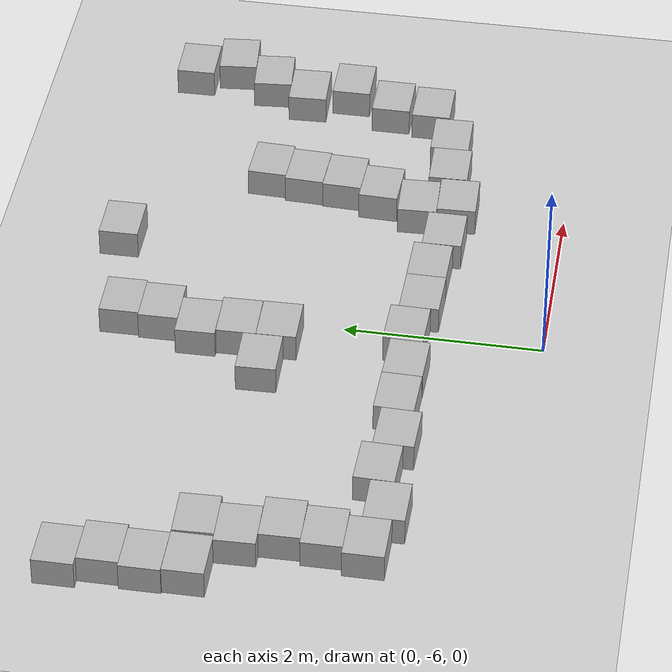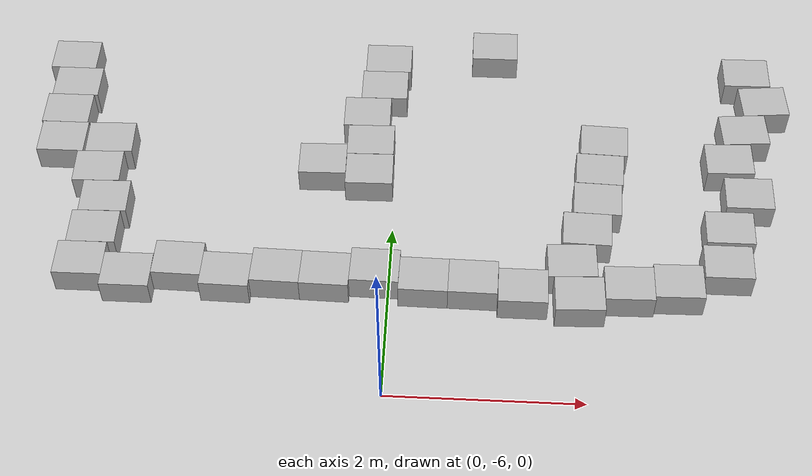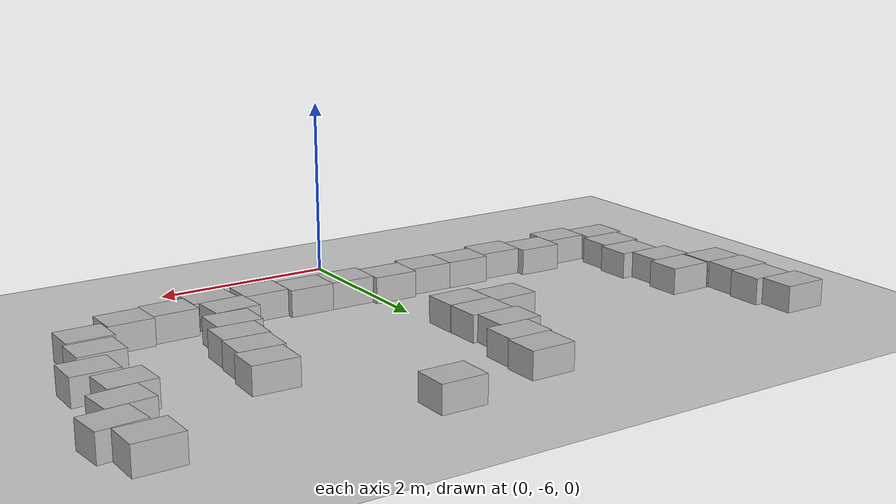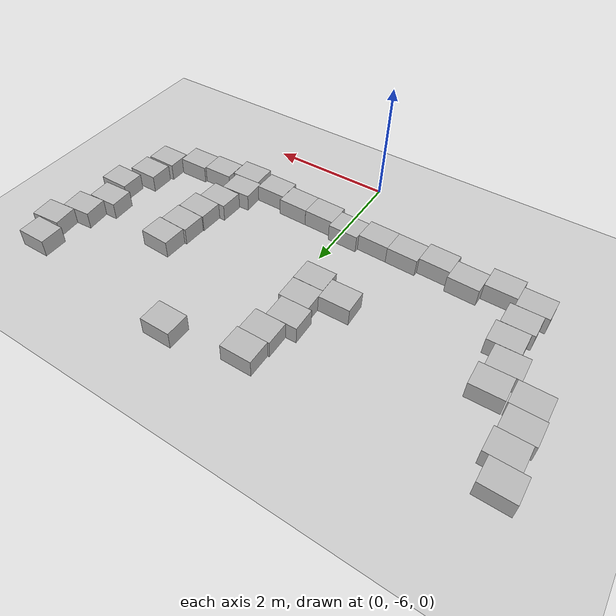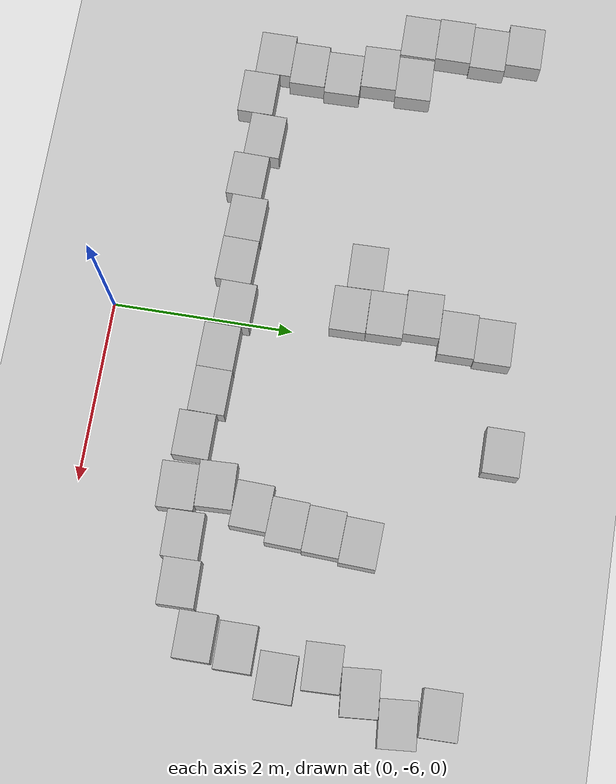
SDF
<sdf version="1.7">
 <world name="default">
  <model name="ground_plane">
   <static>1</static>
   <link name="link">
    <collision name="collision">
     <geometry><plane><normal>0 0 1</normal><size>100 100</size></plane></geometry>
     <surface><friction><ode><mu>100</mu><mu2>50</mu2></ode></friction></surface>
    </collision>
    <visual name="visual">
     <cast_shadows>0</cast_shadows>
     <geometry><plane><normal>0 0 1</normal><size>100 100</size></plane></geometry>
     <material>
      <script><uri>file://media/materials/scripts/gazebo.material</uri><name>Gazebo/Grey</name></script>
     </material>
    </visual>
   </link>
  </model>
  <model name="cardboard_box_clone_1_clone_27">
   <pose>-3.67852 -1.90312 0.149 0 0 -0.000449</pose>
   <link name="link">
    <inertial>
     <mass>2</mass>
     <inertia>
      <ixx>0.0416667</ixx>
      <ixy>0</ixy>
      <ixz>0</ixz>
      <iyy>0.0566667</iyy>
      <iyz>0</iyz>
      <izz>0.0683333</izz>
     </inertia>
    </inertial>
    <collision name="collision">
     <geometry><box><size>0.5 0.4 0.3</size></box></geometry>
     <surface>
      <friction><ode><mu>1</mu><mu2>1</mu2></ode></friction>
      <contact><ode><kp>1e+07</kp><kd>1</kd><min_depth>0.001</min_depth><max_vel>0.1</max_vel></ode></contact>
     </surface>
    </collision>
    <visual name="visual">
     <pose>0 0 -0.15 0 -0 0</pose>
     <geometry>
      <mesh><uri>model://cardboard_box/meshes/cardboard_box.dae</uri><scale>1.25932 1.00745 0.755591</scale></mesh>
     </geometry>
    </visual>
   </link>
  </model>
  <model name="cardboard_box_clone_1_clone_28">
   <pose>-3.58837 -2.30294 0.149 -0 -0 -0.000125</pose>
   <link name="link">
    <inertial>
     <mass>2</mass>
     <inertia>
      <ixx>0.0416667</ixx>
      <ixy>0</ixy>
      <ixz>0</ixz>
      <iyy>0.0566667</iyy>
      <iyz>0</iyz>
      <izz>0.0683333</izz>
     </inertia>
    </inertial>
    <collision name="collision">
     <geometry><box><size>0.5 0.4 0.3</size></box></geometry>
     <surface>
      <friction><ode><mu>1</mu><mu2>1</mu2></ode></friction>
      <contact><ode><kp>1e+07</kp><kd>1</kd><min_depth>0.001</min_depth><max_vel>0.1</max_vel></ode></contact>
     </surface>
    </collision>
    <visual name="visual">
     <pose>0 0 -0.15 0 -0 0</pose>
     <geometry>
      <mesh><uri>model://cardboard_box/meshes/cardboard_box.dae</uri><scale>1.25932 1.00745 0.755591</scale></mesh>
     </geometry>
    </visual>
   </link>
  </model>
  <model name="cardboard_box_clone_1_clone_29">
   <pose>-3.62621 -2.70277 0.149 0 -0 8.4e-05</pose>
   <link name="link">
    <inertial>
     <mass>2</mass>
     <inertia>
      <ixx>0.0416667</ixx>
      <ixy>0</ixy>
      <ixz>0</ixz>
      <iyy>0.0566667</iyy>
      <iyz>0</iyz>
      <izz>0.0683333</izz>
     </inertia>
    </inertial>
    <collision name="collision">
     <geometry><box><size>0.5 0.4 0.3</size></box></geometry>
     <surface>
      <friction><ode><mu>1</mu><mu2>1</mu2></ode></friction>
      <contact><ode><kp>1e+07</kp><kd>1</kd><min_depth>0.001</min_depth><max_vel>0.1</max_vel></ode></contact>
     </surface>
    </collision>
    <visual name="visual">
     <pose>0 0 -0.15 0 -0 0</pose>
     <geometry>
      <mesh><uri>model://cardboard_box/meshes/cardboard_box.dae</uri><scale>1.25932 1.00745 0.755591</scale></mesh>
     </geometry>
    </visual>
   </link>
  </model>
  <model name="cardboard_box_clone_1_clone_30">
   <pose>-3.60942 -3.10296 0.149 0 -0 0.001798</pose>
   <link name="link">
    <inertial>
     <mass>2</mass>
     <inertia>
      <ixx>0.0416667</ixx>
      <ixy>0</ixy>
      <ixz>0</ixz>
      <iyy>0.0566667</iyy>
      <iyz>0</iyz>
      <izz>0.0683333</izz>
     </inertia>
    </inertial>
    <collision name="collision">
     <geometry><box><size>0.5 0.4 0.3</size></box></geometry>
     <surface>
      <friction><ode><mu>1</mu><mu2>1</mu2></ode></friction>
      <contact><ode><kp>1e+07</kp><kd>1</kd><min_depth>0.001</min_depth><max_vel>0.1</max_vel></ode></contact>
     </surface>
    </collision>
    <visual name="visual">
     <pose>0 0 -0.15 0 -0 0</pose>
     <geometry>
      <mesh><uri>model://cardboard_box/meshes/cardboard_box.dae</uri><scale>1.25932 1.00745 0.755591</scale></mesh>
     </geometry>
    </visual>
   </link>
  </model>
  <model name="cardboard_box_clone_1_clone_31">
   <pose>-3.08867 -3.0952 0.149 0 -0 0.025527</pose>
   <link name="link">
    <inertial>
     <mass>2</mass>
     <inertia>
      <ixx>0.0416667</ixx>
      <ixy>0</ixy>
      <ixz>0</ixz>
      <iyy>0.0566667</iyy>
      <iyz>0</iyz>
      <izz>0.0683333</izz>
     </inertia>
    </inertial>
    <collision name="collision">
     <geometry><box><size>0.5 0.4 0.3</size></box></geometry>
     <surface>
      <friction><ode><mu>1</mu><mu2>1</mu2></ode></friction>
      <contact><ode><kp>1e+07</kp><kd>1</kd><min_depth>0.001</min_depth><max_vel>0.1</max_vel></ode></contact>
     </surface>
    </collision>
    <visual name="visual">
     <pose>0 0 -0.15 0 -0 0</pose>
     <geometry>
      <mesh><uri>model://cardboard_box/meshes/cardboard_box.dae</uri><scale>1.25932 1.00745 0.755591</scale></mesh>
     </geometry>
    </visual>
   </link>
  </model>
  <model name="cardboard_box_clone_1_clone_32">
   <pose>-0.155476 -1.79886 0.149 0 -0 0.006625</pose>
   <link name="link">
    <inertial>
     <mass>2</mass>
     <inertia>
      <ixx>0.0416667</ixx>
      <ixy>0</ixy>
      <ixz>0</ixz>
      <iyy>0.0566667</iyy>
      <iyz>0</iyz>
      <izz>0.0683333</izz>
     </inertia>
    </inertial>
    <collision name="collision">
     <geometry><box><size>0.5 0.4 0.3</size></box></geometry>
     <surface>
      <friction><ode><mu>1</mu><mu2>1</mu2></ode></friction>
      <contact><ode><kp>1e+07</kp><kd>1</kd><min_depth>0.001</min_depth><max_vel>0.1</max_vel></ode></contact>
     </surface>
    </collision>
    <visual name="visual">
     <pose>0 0 -0.15 0 -0 0</pose>
     <geometry>
      <mesh><uri>model://cardboard_box/meshes/cardboard_box.dae</uri><scale>1.25932 1.00745 0.755591</scale></mesh>
     </geometry>
    </visual>
   </link>
  </model>
  <model name="cardboard_box_clone_1_clone_33">
   <pose>-0.179333 -2.19811 0.149 0 -0 0.006818</pose>
   <link name="link">
    <inertial>
     <mass>2</mass>
     <inertia>
      <ixx>0.0416667</ixx>
      <ixy>0</ixy>
      <ixz>0</ixz>
      <iyy>0.0566667</iyy>
      <iyz>0</iyz>
      <izz>0.0683333</izz>
     </inertia>
    </inertial>
    <collision name="collision">
     <geometry><box><size>0.5 0.4 0.3</size></box></geometry>
     <surface>
      <friction><ode><mu>1</mu><mu2>1</mu2></ode></friction>
      <contact><ode><kp>1e+07</kp><kd>1</kd><min_depth>0.001</min_depth><max_vel>0.1</max_vel></ode></contact>
     </surface>
    </collision>
    <visual name="visual">
     <pose>0 0 -0.15 0 -0 0</pose>
     <geometry>
      <mesh><uri>model://cardboard_box/meshes/cardboard_box.dae</uri><scale>1.25932 1.00745 0.755591</scale></mesh>
     </geometry>
    </visual>
   </link>
  </model>
  <model name="cardboard_box_clone_1_clone_34">
   <pose>-0.346173 -2.60035 0.149 0 -0 0.014641</pose>
   <link name="link">
    <inertial>
     <mass>2</mass>
     <inertia>
      <ixx>0.0416667</ixx>
      <ixy>0</ixy>
      <ixz>0</ixz>
      <iyy>0.0566667</iyy>
      <iyz>0</iyz>
      <izz>0.0683333</izz>
     </inertia>
    </inertial>
    <collision name="collision">
     <geometry><box><size>0.5 0.4 0.3</size></box></geometry>
     <surface>
      <friction><ode><mu>1</mu><mu2>1</mu2></ode></friction>
      <contact><ode><kp>1e+07</kp><kd>1</kd><min_depth>0.001</min_depth><max_vel>0.1</max_vel></ode></contact>
     </surface>
    </collision>
    <visual name="visual">
     <pose>0 0 -0.15 0 -0 0</pose>
     <geometry>
      <mesh><uri>model://cardboard_box/meshes/cardboard_box.dae</uri><scale>1.25932 1.00745 0.755591</scale></mesh>
     </geometry>
    </visual>
   </link>
  </model>
  <model name="cardboard_box_clone_1_clone_35">
   <pose>-0.284939 -2.99955 0.149 0 -0 0.017939</pose>
   <link name="link">
    <inertial>
     <mass>2</mass>
     <inertia>
      <ixx>0.0416667</ixx>
      <ixy>0</ixy>
      <ixz>0</ixz>
      <iyy>0.0566667</iyy>
      <iyz>0</iyz>
      <izz>0.0683333</izz>
     </inertia>
    </inertial>
    <collision name="collision">
     <geometry><box><size>0.5 0.4 0.3</size></box></geometry>
     <surface>
      <friction><ode><mu>1</mu><mu2>1</mu2></ode></friction>
      <contact><ode><kp>1e+07</kp><kd>1</kd><min_depth>0.001</min_depth><max_vel>0.1</max_vel></ode></contact>
     </surface>
    </collision>
    <visual name="visual">
     <pose>0 0 -0.15 0 -0 0</pose>
     <geometry>
      <mesh><uri>model://cardboard_box/meshes/cardboard_box.dae</uri><scale>1.25932 1.00745 0.755591</scale></mesh>
     </geometry>
    </visual>
   </link>
  </model>
  <model name="cardboard_box_clone_1_clone_36">
   <pose>-0.275824 -3.40108 0.149 0 -0 0.012612</pose>
   <link name="link">
    <inertial>
     <mass>2</mass>
     <inertia>
      <ixx>0.0416667</ixx>
      <ixy>0</ixy>
      <ixz>0</ixz>
      <iyy>0.0566667</iyy>
      <iyz>0</iyz>
      <izz>0.0683333</izz>
     </inertia>
    </inertial>
    <collision name="collision">
     <geometry><box><size>0.5 0.4 0.3</size></box></geometry>
     <surface>
      <friction><ode><mu>1</mu><mu2>1</mu2></ode></friction>
      <contact><ode><kp>1e+07</kp><kd>1</kd><min_depth>0.001</min_depth><max_vel>0.1</max_vel></ode></contact>
     </surface>
    </collision>
    <visual name="visual">
     <pose>0 0 -0.15 0 -0 0</pose>
     <geometry>
      <mesh><uri>model://cardboard_box/meshes/cardboard_box.dae</uri><scale>1.25932 1.00745 0.755591</scale></mesh>
     </geometry>
    </visual>
   </link>
  </model>
  <model name="cardboard_box_clone_1_clone_37">
   <pose>-0.779447 -3.2808 0.149 0 -0 0.019452</pose>
   <link name="link">
    <inertial>
     <mass>2</mass>
     <inertia>
      <ixx>0.0416667</ixx>
      <ixy>0</ixy>
      <ixz>0</ixz>
      <iyy>0.0566667</iyy>
      <iyz>0</iyz>
      <izz>0.0683333</izz>
     </inertia>
    </inertial>
    <collision name="collision">
     <geometry><box><size>0.5 0.4 0.3</size></box></geometry>
     <surface>
      <friction><ode><mu>1</mu><mu2>1</mu2></ode></friction>
      <contact><ode><kp>1e+07</kp><kd>1</kd><min_depth>0.001</min_depth><max_vel>0.1</max_vel></ode></contact>
     </surface>
    </collision>
    <visual name="visual">
     <pose>0 0 -0.15 0 -0 0</pose>
     <geometry>
      <mesh><uri>model://cardboard_box/meshes/cardboard_box.dae</uri><scale>1.25932 1.00745 0.755591</scale></mesh>
     </geometry>
    </visual>
   </link>
  </model>
  <model name="cardboard_box_clone_1_clone_38">
   <pose>-3.15869 -3.49667 0.149 0 -0 0.024646</pose>
   <link name="link">
    <inertial>
     <mass>2</mass>
     <inertia>
      <ixx>0.0416667</ixx>
      <ixy>0</ixy>
      <ixz>0</ixz>
      <iyy>0.0566667</iyy>
      <iyz>0</iyz>
      <izz>0.0683333</izz>
     </inertia>
    </inertial>
    <collision name="collision">
     <geometry><box><size>0.5 0.4 0.3</size></box></geometry>
     <surface>
      <friction><ode><mu>1</mu><mu2>1</mu2></ode></friction>
      <contact><ode><kp>1e+07</kp><kd>1</kd><min_depth>0.001</min_depth><max_vel>0.1</max_vel></ode></contact>
     </surface>
    </collision>
    <visual name="visual">
     <pose>0 0 -0.15 0 -0 0</pose>
     <geometry>
      <mesh><uri>model://cardboard_box/meshes/cardboard_box.dae</uri><scale>1.25932 1.00745 0.755591</scale></mesh>
     </geometry>
    </visual>
   </link>
  </model>
  <model name="cardboard_box_clone_1_clone_39">
   <pose>-3.02009 -3.89514 0.149 0 -0 0.015917</pose>
   <link name="link">
    <inertial>
     <mass>2</mass>
     <inertia>
      <ixx>0.0416667</ixx>
      <ixy>0</ixy>
      <ixz>0</ixz>
      <iyy>0.0566667</iyy>
      <iyz>0</iyz>
      <izz>0.0683333</izz>
     </inertia>
    </inertial>
    <collision name="collision">
     <geometry><box><size>0.5 0.4 0.3</size></box></geometry>
     <surface>
      <friction><ode><mu>1</mu><mu2>1</mu2></ode></friction>
      <contact><ode><kp>1e+07</kp><kd>1</kd><min_depth>0.001</min_depth><max_vel>0.1</max_vel></ode></contact>
     </surface>
    </collision>
    <visual name="visual">
     <pose>0 0 -0.15 0 -0 0</pose>
     <geometry>
      <mesh><uri>model://cardboard_box/meshes/cardboard_box.dae</uri><scale>1.25932 1.00745 0.755591</scale></mesh>
     </geometry>
    </visual>
   </link>
  </model>
  <model name="cardboard_box_clone_1_clone_40">
   <pose>-3.06921 -4.29699 0.149 0 -0 0.006871</pose>
   <link name="link">
    <inertial>
     <mass>2</mass>
     <inertia>
      <ixx>0.0416667</ixx>
      <ixy>0</ixy>
      <ixz>0</ixz>
      <iyy>0.0566667</iyy>
      <iyz>0</iyz>
      <izz>0.0683333</izz>
     </inertia>
    </inertial>
    <collision name="collision">
     <geometry><box><size>0.5 0.4 0.3</size></box></geometry>
     <surface>
      <friction><ode><mu>1</mu><mu2>1</mu2></ode></friction>
      <contact><ode><kp>1e+07</kp><kd>1</kd><min_depth>0.001</min_depth><max_vel>0.1</max_vel></ode></contact>
     </surface>
    </collision>
    <visual name="visual">
     <pose>0 0 -0.15 0 -0 0</pose>
     <geometry>
      <mesh><uri>model://cardboard_box/meshes/cardboard_box.dae</uri><scale>1.25932 1.00745 0.755591</scale></mesh>
     </geometry>
    </visual>
   </link>
  </model>
  <model name="cardboard_box_clone_1_clone_41">
   <pose>-3.14101 -4.69767 0.149 0 -0 0.000338</pose>
   <link name="link">
    <inertial>
     <mass>2</mass>
     <inertia>
      <ixx>0.0416667</ixx>
      <ixy>0</ixy>
      <ixz>0</ixz>
      <iyy>0.0566667</iyy>
      <iyz>0</iyz>
      <izz>0.0683333</izz>
     </inertia>
    </inertial>
    <collision name="collision">
     <geometry><box><size>0.5 0.4 0.3</size></box></geometry>
     <surface>
      <friction><ode><mu>1</mu><mu2>1</mu2></ode></friction>
      <contact><ode><kp>1e+07</kp><kd>1</kd><min_depth>0.001</min_depth><max_vel>0.1</max_vel></ode></contact>
     </surface>
    </collision>
    <visual name="visual">
     <pose>0 0 -0.15 0 -0 0</pose>
     <geometry>
      <mesh><uri>model://cardboard_box/meshes/cardboard_box.dae</uri><scale>1.25932 1.00745 0.755591</scale></mesh>
     </geometry>
    </visual>
   </link>
  </model>
  <model name="cardboard_box_clone_1_clone_42">
   <pose>-2.64169 -4.81898 0.149 0 -0 -0.003147</pose>
   <link name="link">
    <inertial>
     <mass>2</mass>
     <inertia>
      <ixx>0.0416667</ixx>
      <ixy>0</ixy>
      <ixz>0</ixz>
      <iyy>0.0566667</iyy>
      <iyz>0</iyz>
      <izz>0.0683333</izz>
     </inertia>
    </inertial>
    <collision name="collision">
     <geometry><box><size>0.5 0.4 0.3</size></box></geometry>
     <surface>
      <friction><ode><mu>1</mu><mu2>1</mu2></ode></friction>
      <contact><ode><kp>1e+07</kp><kd>1</kd><min_depth>0.001</min_depth><max_vel>0.1</max_vel></ode></contact>
     </surface>
    </collision>
    <visual name="visual">
     <pose>0 0 -0.15 0 -0 0</pose>
     <geometry>
      <mesh><uri>model://cardboard_box/meshes/cardboard_box.dae</uri><scale>1.25932 1.00745 0.755591</scale></mesh>
     </geometry>
    </visual>
   </link>
  </model>
  <model name="cardboard_box_clone_1_clone_43">
   <pose>-2.13754 -4.6553 0.149 0 0 -0.022778</pose>
   <link name="link">
    <inertial>
     <mass>2</mass>
     <inertia>
      <ixx>0.0416667</ixx>
      <ixy>0</ixy>
      <ixz>0</ixz>
      <iyy>0.0566667</iyy>
      <iyz>0</iyz>
      <izz>0.0683333</izz>
     </inertia>
    </inertial>
    <collision name="collision">
     <geometry><box><size>0.5 0.4 0.3</size></box></geometry>
     <surface>
      <friction><ode><mu>1</mu><mu2>1</mu2></ode></friction>
      <contact><ode><kp>1e+07</kp><kd>1</kd><min_depth>0.001</min_depth><max_vel>0.1</max_vel></ode></contact>
     </surface>
    </collision>
    <visual name="visual">
     <pose>0 0 -0.15 0 -0 0</pose>
     <geometry>
      <mesh><uri>model://cardboard_box/meshes/cardboard_box.dae</uri><scale>1.25932 1.00745 0.755591</scale></mesh>
     </geometry>
    </visual>
   </link>
  </model>
  <model name="cardboard_box_clone_1_clone_44">
   <pose>-1.64021 -4.77038 0.149 0 -0 -0.022615</pose>
   <link name="link">
    <inertial>
     <mass>2</mass>
     <inertia>
      <ixx>0.0416667</ixx>
      <ixy>0</ixy>
      <ixz>0</ixz>
      <iyy>0.0566667</iyy>
      <iyz>0</iyz>
      <izz>0.0683333</izz>
     </inertia>
    </inertial>
    <collision name="collision">
     <geometry><box><size>0.5 0.4 0.3</size></box></geometry>
     <surface>
      <friction><ode><mu>1</mu><mu2>1</mu2></ode></friction>
      <contact><ode><kp>1e+07</kp><kd>1</kd><min_depth>0.001</min_depth><max_vel>0.1</max_vel></ode></contact>
     </surface>
    </collision>
    <visual name="visual">
     <pose>0 0 -0.15 0 -0 0</pose>
     <geometry>
      <mesh><uri>model://cardboard_box/meshes/cardboard_box.dae</uri><scale>1.25932 1.00745 0.755591</scale></mesh>
     </geometry>
    </visual>
   </link>
  </model>
  <model name="cardboard_box_clone_1_clone_45">
   <pose>-1.13868 -4.70217 0.149 0 0 -0.02198</pose>
   <link name="link">
    <inertial>
     <mass>2</mass>
     <inertia>
      <ixx>0.0416667</ixx>
      <ixy>0</ixy>
      <ixz>0</ixz>
      <iyy>0.0566667</iyy>
      <iyz>0</iyz>
      <izz>0.0683333</izz>
     </inertia>
    </inertial>
    <collision name="collision">
     <geometry><box><size>0.5 0.4 0.3</size></box></geometry>
     <surface>
      <friction><ode><mu>1</mu><mu2>1</mu2></ode></friction>
      <contact><ode><kp>1e+07</kp><kd>1</kd><min_depth>0.001</min_depth><max_vel>0.1</max_vel></ode></contact>
     </surface>
    </collision>
    <visual name="visual">
     <pose>0 0 -0.15 0 -0 0</pose>
     <geometry>
      <mesh><uri>model://cardboard_box/meshes/cardboard_box.dae</uri><scale>1.25932 1.00745 0.755591</scale></mesh>
     </geometry>
    </visual>
   </link>
  </model>
  <model name="cardboard_box_clone_1_clone_46">
   <pose>-0.639343 -4.71555 0.149 0 -0 -0.022218</pose>
   <link name="link">
    <inertial>
     <mass>2</mass>
     <inertia>
      <ixx>0.0416667</ixx>
      <ixy>0</ixy>
      <ixz>0</ixz>
      <iyy>0.0566667</iyy>
      <iyz>0</iyz>
      <izz>0.0683333</izz>
     </inertia>
    </inertial>
    <collision name="collision">
     <geometry><box><size>0.5 0.4 0.3</size></box></geometry>
     <surface>
      <friction><ode><mu>1</mu><mu2>1</mu2></ode></friction>
      <contact><ode><kp>1e+07</kp><kd>1</kd><min_depth>0.001</min_depth><max_vel>0.1</max_vel></ode></contact>
     </surface>
    </collision>
    <visual name="visual">
     <pose>0 0 -0.15 0 -0 0</pose>
     <geometry>
      <mesh><uri>model://cardboard_box/meshes/cardboard_box.dae</uri><scale>1.25932 1.00745 0.755591</scale></mesh>
     </geometry>
    </visual>
   </link>
  </model>
  <model name="cardboard_box_clone_1_clone_47">
   <pose>-0.138284 -4.65138 0.149 0 0 -0.019123</pose>
   <link name="link">
    <inertial>
     <mass>2</mass>
     <inertia>
      <ixx>0.0416667</ixx>
      <ixy>0</ixy>
      <ixz>0</ixz>
      <iyy>0.0566667</iyy>
      <iyz>0</iyz>
      <izz>0.0683333</izz>
     </inertia>
    </inertial>
    <collision name="collision">
     <geometry><box><size>0.5 0.4 0.3</size></box></geometry>
     <surface>
      <friction><ode><mu>1</mu><mu2>1</mu2></ode></friction>
      <contact><ode><kp>1e+07</kp><kd>1</kd><min_depth>0.001</min_depth><max_vel>0.1</max_vel></ode></contact>
     </surface>
    </collision>
    <visual name="visual">
     <pose>0 0 -0.15 0 -0 0</pose>
     <geometry>
      <mesh><uri>model://cardboard_box/meshes/cardboard_box.dae</uri><scale>1.25932 1.00745 0.755591</scale></mesh>
     </geometry>
    </visual>
   </link>
  </model>
  <model name="cardboard_box_clone_1_clone_48">
   <pose>0.360451 -4.74196 0.149 0 0 -0.01476</pose>
   <link name="link">
    <inertial>
     <mass>2</mass>
     <inertia>
      <ixx>0.0416667</ixx>
      <ixy>0</ixy>
      <ixz>0</ixz>
      <iyy>0.0566667</iyy>
      <iyz>0</iyz>
      <izz>0.0683333</izz>
     </inertia>
    </inertial>
    <collision name="collision">
     <geometry><box><size>0.5 0.4 0.3</size></box></geometry>
     <surface>
      <friction><ode><mu>1</mu><mu2>1</mu2></ode></friction>
      <contact><ode><kp>1e+07</kp><kd>1</kd><min_depth>0.001</min_depth><max_vel>0.1</max_vel></ode></contact>
     </surface>
    </collision>
    <visual name="visual">
     <pose>0 0 -0.15 0 -0 0</pose>
     <geometry>
      <mesh><uri>model://cardboard_box/meshes/cardboard_box.dae</uri><scale>1.25932 1.00745 0.755591</scale></mesh>
     </geometry>
    </visual>
   </link>
  </model>
  <model name="cardboard_box_clone_1_clone_49">
   <pose>0.860372 -4.74782 0.149 0 -0 -0.01467</pose>
   <link name="link">
    <inertial>
     <mass>2</mass>
     <inertia>
      <ixx>0.0416667</ixx>
      <ixy>0</ixy>
      <ixz>0</ixz>
      <iyy>0.0566667</iyy>
      <iyz>0</iyz>
      <izz>0.0683333</izz>
     </inertia>
    </inertial>
    <collision name="collision">
     <geometry><box><size>0.5 0.4 0.3</size></box></geometry>
     <surface>
      <friction><ode><mu>1</mu><mu2>1</mu2></ode></friction>
      <contact><ode><kp>1e+07</kp><kd>1</kd><min_depth>0.001</min_depth><max_vel>0.1</max_vel></ode></contact>
     </surface>
    </collision>
    <visual name="visual">
     <pose>0 0 -0.15 0 -0 0</pose>
     <geometry>
      <mesh><uri>model://cardboard_box/meshes/cardboard_box.dae</uri><scale>1.25932 1.00745 0.755591</scale></mesh>
     </geometry>
    </visual>
   </link>
  </model>
  <model name="cardboard_box_clone_1_clone_50">
   <pose>1.02912 -1.55303 0.149 0 -0 0.001314</pose>
   <link name="link">
    <inertial>
     <mass>2</mass>
     <inertia>
      <ixx>0.0416667</ixx>
      <ixy>0</ixy>
      <ixz>0</ixz>
      <iyy>0.0566667</iyy>
      <iyz>0</iyz>
      <izz>0.0683333</izz>
     </inertia>
    </inertial>
    <collision name="collision">
     <geometry><box><size>0.5 0.4 0.3</size></box></geometry>
     <surface>
      <friction><ode><mu>1</mu><mu2>1</mu2></ode></friction>
      <contact><ode><kp>1e+07</kp><kd>1</kd><min_depth>0.001</min_depth><max_vel>0.1</max_vel></ode></contact>
     </surface>
    </collision>
    <visual name="visual">
     <pose>0 0 -0.15 0 -0 0</pose>
     <geometry>
      <mesh><uri>model://cardboard_box/meshes/cardboard_box.dae</uri><scale>1.25932 1.00745 0.755591</scale></mesh>
     </geometry>
    </visual>
   </link>
  </model>
  <model name="cardboard_box_clone_1_clone_53">
   <pose>3.82431 -1.83138 0.149 0 -0 0.012627</pose>
   <link name="link">
    <inertial>
     <mass>2</mass>
     <inertia>
      <ixx>0.0416667</ixx>
      <ixy>0</ixy>
      <ixz>0</ixz>
      <iyy>0.0566667</iyy>
      <iyz>0</iyz>
      <izz>0.0683333</izz>
     </inertia>
    </inertial>
    <collision name="collision">
     <geometry><box><size>0.5 0.4 0.3</size></box></geometry>
     <surface>
      <friction><ode><mu>1</mu><mu2>1</mu2></ode></friction>
      <contact><ode><kp>1e+07</kp><kd>1</kd><min_depth>0.001</min_depth><max_vel>0.1</max_vel></ode></contact>
     </surface>
    </collision>
    <visual name="visual">
     <pose>0 0 -0.15 0 -0 0</pose>
     <geometry>
      <mesh><uri>model://cardboard_box/meshes/cardboard_box.dae</uri><scale>1.25932 1.00745 0.755591</scale></mesh>
     </geometry>
    </visual>
   </link>
  </model>
  <model name="cardboard_box_clone_1_clone_55">
   <pose>3.98521 -2.24876 0.149 0 -0 0.085073</pose>
   <link name="link">
    <inertial>
     <mass>2</mass>
     <inertia>
      <ixx>0.0416667</ixx>
      <ixy>0</ixy>
      <ixz>0</ixz>
      <iyy>0.0566667</iyy>
      <iyz>0</iyz>
      <izz>0.0683333</izz>
     </inertia>
    </inertial>
    <collision name="collision">
     <geometry><box><size>0.5 0.4 0.3</size></box></geometry>
     <surface>
      <friction><ode><mu>1</mu><mu2>1</mu2></ode></friction>
      <contact><ode><kp>1e+07</kp><kd>1</kd><min_depth>0.001</min_depth><max_vel>0.1</max_vel></ode></contact>
     </surface>
    </collision>
    <visual name="visual">
     <pose>0 0 -0.15 0 -0 0</pose>
     <geometry>
      <mesh><uri>model://cardboard_box/meshes/cardboard_box.dae</uri><scale>1.25932 1.00745 0.755591</scale></mesh>
     </geometry>
    </visual>
   </link>
  </model>
  <model name="cardboard_box_clone_1_clone_56">
   <pose>3.73821 -2.67259 0.149 0 -0 0.080928</pose>
   <link name="link">
    <inertial>
     <mass>2</mass>
     <inertia>
      <ixx>0.0416667</ixx>
      <ixy>0</ixy>
      <ixz>0</ixz>
      <iyy>0.0566667</iyy>
      <iyz>0</iyz>
      <izz>0.0683333</izz>
     </inertia>
    </inertial>
    <collision name="collision">
     <geometry><box><size>0.5 0.4 0.3</size></box></geometry>
     <surface>
      <friction><ode><mu>1</mu><mu2>1</mu2></ode></friction>
      <contact><ode><kp>1e+07</kp><kd>1</kd><min_depth>0.001</min_depth><max_vel>0.1</max_vel></ode></contact>
     </surface>
    </collision>
    <visual name="visual">
     <pose>0 0 -0.15 0 -0 0</pose>
     <geometry>
      <mesh><uri>model://cardboard_box/meshes/cardboard_box.dae</uri><scale>1.25932 1.00745 0.755591</scale></mesh>
     </geometry>
    </visual>
   </link>
  </model>
  <model name="cardboard_box_clone_1_clone_57">
   <pose>3.54721 -3.09017 0.149 0 -0 0.034348</pose>
   <link name="link">
    <inertial>
     <mass>2</mass>
     <inertia>
      <ixx>0.0416667</ixx>
      <ixy>0</ixy>
      <ixz>0</ixz>
      <iyy>0.0566667</iyy>
      <iyz>0</iyz>
      <izz>0.0683333</izz>
     </inertia>
    </inertial>
    <collision name="collision">
     <geometry><box><size>0.5 0.4 0.3</size></box></geometry>
     <surface>
      <friction><ode><mu>1</mu><mu2>1</mu2></ode></friction>
      <contact><ode><kp>1e+07</kp><kd>1</kd><min_depth>0.001</min_depth><max_vel>0.1</max_vel></ode></contact>
     </surface>
    </collision>
    <visual name="visual">
     <pose>0 0 -0.15 0 -0 0</pose>
     <geometry>
      <mesh><uri>model://cardboard_box/meshes/cardboard_box.dae</uri><scale>1.25932 1.00745 0.755591</scale></mesh>
     </geometry>
    </visual>
   </link>
  </model>
  <model name="cardboard_box_clone_1_clone_58">
   <pose>3.72206 -3.54687 0.149 0 0 -0.000102</pose>
   <link name="link">
    <inertial>
     <mass>2</mass>
     <inertia>
      <ixx>0.0416667</ixx>
      <ixy>0</ixy>
      <ixz>0</ixz>
      <iyy>0.0566667</iyy>
      <iyz>0</iyz>
      <izz>0.0683333</izz>
     </inertia>
    </inertial>
    <collision name="collision">
     <geometry><box><size>0.5 0.4 0.3</size></box></geometry>
     <surface>
      <friction><ode><mu>1</mu><mu2>1</mu2></ode></friction>
      <contact><ode><kp>1e+07</kp><kd>1</kd><min_depth>0.001</min_depth><max_vel>0.1</max_vel></ode></contact>
     </surface>
    </collision>
    <visual name="visual">
     <pose>0 0 -0.15 0 -0 0</pose>
     <geometry>
      <mesh><uri>model://cardboard_box/meshes/cardboard_box.dae</uri><scale>1.25932 1.00745 0.755591</scale></mesh>
     </geometry>
    </visual>
   </link>
  </model>
  <model name="cardboard_box_clone_1_clone_59">
   <pose>3.48737 -4.00935 0.149 0 0 -0.000102</pose>
   <link name="link">
    <inertial>
     <mass>2</mass>
     <inertia>
      <ixx>0.0416667</ixx>
      <ixy>0</ixy>
      <ixz>0</ixz>
      <iyy>0.0566667</iyy>
      <iyz>0</iyz>
      <izz>0.0683333</izz>
     </inertia>
    </inertial>
    <collision name="collision">
     <geometry><box><size>0.5 0.4 0.3</size></box></geometry>
     <surface>
      <friction><ode><mu>1</mu><mu2>1</mu2></ode></friction>
      <contact><ode><kp>1e+07</kp><kd>1</kd><min_depth>0.001</min_depth><max_vel>0.1</max_vel></ode></contact>
     </surface>
    </collision>
    <visual name="visual">
     <pose>0 0 -0.15 0 -0 0</pose>
     <geometry>
      <mesh><uri>model://cardboard_box/meshes/cardboard_box.dae</uri><scale>1.25932 1.00745 0.755591</scale></mesh>
     </geometry>
    </visual>
   </link>
  </model>
  <model name="cardboard_box_clone_1_clone_60">
   <pose>3.44287 -4.44508 0.149 0 0 -0.000102</pose>
   <link name="link">
    <inertial>
     <mass>2</mass>
     <inertia>
      <ixx>0.0416667</ixx>
      <ixy>0</ixy>
      <ixz>0</ixz>
      <iyy>0.0566667</iyy>
      <iyz>0</iyz>
      <izz>0.0683333</izz>
     </inertia>
    </inertial>
    <collision name="collision">
     <geometry><box><size>0.5 0.4 0.3</size></box></geometry>
     <surface>
      <friction><ode><mu>1</mu><mu2>1</mu2></ode></friction>
      <contact><ode><kp>1e+07</kp><kd>1</kd><min_depth>0.001</min_depth><max_vel>0.1</max_vel></ode></contact>
     </surface>
    </collision>
    <visual name="visual">
     <pose>0 0 -0.15 0 -0 0</pose>
     <geometry>
      <mesh><uri>model://cardboard_box/meshes/cardboard_box.dae</uri><scale>1.25932 1.00745 0.755591</scale></mesh>
     </geometry>
    </visual>
   </link>
  </model>
  <model name="cardboard_box_clone_1_clone_61">
   <pose>1.36182 -4.83327 0.149 0 0 -0.001998</pose>
   <link name="link">
    <inertial>
     <mass>2</mass>
     <inertia>
      <ixx>0.0416667</ixx>
      <ixy>0</ixy>
      <ixz>0</ixz>
      <iyy>0.0566667</iyy>
      <iyz>0</iyz>
      <izz>0.0683333</izz>
     </inertia>
    </inertial>
    <collision name="collision">
     <geometry><box><size>0.5 0.4 0.3</size></box></geometry>
     <surface>
      <friction><ode><mu>1</mu><mu2>1</mu2></ode></friction>
      <contact><ode><kp>1e+07</kp><kd>1</kd><min_depth>0.001</min_depth><max_vel>0.1</max_vel></ode></contact>
     </surface>
    </collision>
    <visual name="visual">
     <pose>0 0 -0.15 0 -0 0</pose>
     <geometry>
      <mesh><uri>model://cardboard_box/meshes/cardboard_box.dae</uri><scale>1.25932 1.00745 0.755591</scale></mesh>
     </geometry>
    </visual>
   </link>
  </model>
  <model name="cardboard_box_clone_1_clone_62">
   <pose>1.92846 -4.90214 0.149 0 -0 0.029098</pose>
   <link name="link">
    <inertial>
     <mass>2</mass>
     <inertia>
      <ixx>0.0416667</ixx>
      <ixy>0</ixy>
      <ixz>0</ixz>
      <iyy>0.0566667</iyy>
      <iyz>0</iyz>
      <izz>0.0683333</izz>
     </inertia>
    </inertial>
    <collision name="collision">
     <geometry><box><size>0.5 0.4 0.3</size></box></geometry>
     <surface>
      <friction><ode><mu>1</mu><mu2>1</mu2></ode></friction>
      <contact><ode><kp>1e+07</kp><kd>1</kd><min_depth>0.001</min_depth><max_vel>0.1</max_vel></ode></contact>
     </surface>
    </collision>
    <visual name="visual">
     <pose>0 0 -0.15 0 -0 0</pose>
     <geometry>
      <mesh><uri>model://cardboard_box/meshes/cardboard_box.dae</uri><scale>1.25932 1.00745 0.755591</scale></mesh>
     </geometry>
    </visual>
   </link>
  </model>
  <model name="cardboard_box_clone_1_clone_63">
   <pose>1.85776 -4.50326 0.149 0 -0 0.037344</pose>
   <link name="link">
    <inertial>
     <mass>2</mass>
     <inertia>
      <ixx>0.0416667</ixx>
      <ixy>0</ixy>
      <ixz>0</ixz>
      <iyy>0.0566667</iyy>
      <iyz>0</iyz>
      <izz>0.0683333</izz>
     </inertia>
    </inertial>
    <collision name="collision">
     <geometry><box><size>0.5 0.4 0.3</size></box></geometry>
     <surface>
      <friction><ode><mu>1</mu><mu2>1</mu2></ode></friction>
      <contact><ode><kp>1e+07</kp><kd>1</kd><min_depth>0.001</min_depth><max_vel>0.1</max_vel></ode></contact>
     </surface>
    </collision>
    <visual name="visual">
     <pose>0 0 -0.15 0 -0 0</pose>
     <geometry>
      <mesh><uri>model://cardboard_box/meshes/cardboard_box.dae</uri><scale>1.25932 1.00745 0.755591</scale></mesh>
     </geometry>
    </visual>
   </link>
  </model>
  <model name="cardboard_box_clone_1_clone_64">
   <pose>2.01932 -4.09215 0.149 0 0 -0.033712</pose>
   <link name="link">
    <inertial>
     <mass>2</mass>
     <inertia>
      <ixx>0.0416667</ixx>
      <ixy>0</ixy>
      <ixz>0</ixz>
      <iyy>0.0566667</iyy>
      <iyz>0</iyz>
      <izz>0.0683333</izz>
     </inertia>
    </inertial>
    <collision name="collision">
     <geometry><box><size>0.5 0.4 0.3</size></box></geometry>
     <surface>
      <friction><ode><mu>1</mu><mu2>1</mu2></ode></friction>
      <contact><ode><kp>1e+07</kp><kd>1</kd><min_depth>0.001</min_depth><max_vel>0.1</max_vel></ode></contact>
     </surface>
    </collision>
    <visual name="visual">
     <pose>0 0 -0.15 0 -0 0</pose>
     <geometry>
      <mesh><uri>model://cardboard_box/meshes/cardboard_box.dae</uri><scale>1.25932 1.00745 0.755591</scale></mesh>
     </geometry>
    </visual>
   </link>
  </model>
  <model name="cardboard_box_clone_1_clone_65">
   <pose>2.16755 -3.29565 0.149 -0 -0 -0.039681</pose>
   <link name="link">
    <inertial>
     <mass>2</mass>
     <inertia>
      <ixx>0.0416667</ixx>
      <ixy>0</ixy>
      <ixz>0</ixz>
      <iyy>0.0566667</iyy>
      <iyz>0</iyz>
      <izz>0.0683333</izz>
     </inertia>
    </inertial>
    <collision name="collision">
     <geometry><box><size>0.5 0.4 0.3</size></box></geometry>
     <surface>
      <friction><ode><mu>1</mu><mu2>1</mu2></ode></friction>
      <contact><ode><kp>1e+07</kp><kd>1</kd><min_depth>0.001</min_depth><max_vel>0.1</max_vel></ode></contact>
     </surface>
    </collision>
    <visual name="visual">
     <pose>0 0 -0.15 0 -0 0</pose>
     <geometry>
      <mesh><uri>model://cardboard_box/meshes/cardboard_box.dae</uri><scale>1.25932 1.00745 0.755591</scale></mesh>
     </geometry>
    </visual>
   </link>
  </model>
  <model name="cardboard_box_clone_1_clone_66">
   <pose>2.2232 -2.89637 0.149 0 0 -0.040048</pose>
   <link name="link">
    <inertial>
     <mass>2</mass>
     <inertia>
      <ixx>0.0416667</ixx>
      <ixy>0</ixy>
      <ixz>0</ixz>
      <iyy>0.0566667</iyy>
      <iyz>0</iyz>
      <izz>0.0683333</izz>
     </inertia>
    </inertial>
    <collision name="collision">
     <geometry><box><size>0.5 0.4 0.3</size></box></geometry>
     <surface>
      <friction><ode><mu>1</mu><mu2>1</mu2></ode></friction>
      <contact><ode><kp>1e+07</kp><kd>1</kd><min_depth>0.001</min_depth><max_vel>0.1</max_vel></ode></contact>
     </surface>
    </collision>
    <visual name="visual">
     <pose>0 0 -0.15 0 -0 0</pose>
     <geometry>
      <mesh><uri>model://cardboard_box/meshes/cardboard_box.dae</uri><scale>1.25932 1.00745 0.755591</scale></mesh>
     </geometry>
    </visual>
   </link>
  </model>
  <model name="cardboard_box_clone_1_clone_67">
   <pose>2.43015 -4.75542 0.149 0 -0 0.017124</pose>
   <link name="link">
    <inertial>
     <mass>2</mass>
     <inertia>
      <ixx>0.0416667</ixx>
      <ixy>0</ixy>
      <ixz>0</ixz>
      <iyy>0.0566667</iyy>
      <iyz>0</iyz>
      <izz>0.0683333</izz>
     </inertia>
    </inertial>
    <collision name="collision">
     <geometry><box><size>0.5 0.4 0.3</size></box></geometry>
     <surface>
      <friction><ode><mu>1</mu><mu2>1</mu2></ode></friction>
      <contact><ode><kp>1e+07</kp><kd>1</kd><min_depth>0.001</min_depth><max_vel>0.1</max_vel></ode></contact>
     </surface>
    </collision>
    <visual name="visual">
     <pose>0 0 -0.15 0 -0 0</pose>
     <geometry>
      <mesh><uri>model://cardboard_box/meshes/cardboard_box.dae</uri><scale>1.25932 1.00745 0.755591</scale></mesh>
     </geometry>
    </visual>
   </link>
  </model>
  <model name="cardboard_box_clone_1_clone_68">
   <pose>2.92891 -4.70701 0.149 0 -0 0.016147</pose>
   <link name="link">
    <inertial>
     <mass>2</mass>
     <inertia>
      <ixx>0.0416667</ixx>
      <ixy>0</ixy>
      <ixz>0</ixz>
      <iyy>0.0566667</iyy>
      <iyz>0</iyz>
      <izz>0.0683333</izz>
     </inertia>
    </inertial>
    <collision name="collision">
     <geometry><box><size>0.5 0.4 0.3</size></box></geometry>
     <surface>
      <friction><ode><mu>1</mu><mu2>1</mu2></ode></friction>
      <contact><ode><kp>1e+07</kp><kd>1</kd><min_depth>0.001</min_depth><max_vel>0.1</max_vel></ode></contact>
     </surface>
    </collision>
    <visual name="visual">
     <pose>0 0 -0.15 0 -0 0</pose>
     <geometry>
      <mesh><uri>model://cardboard_box/meshes/cardboard_box.dae</uri><scale>1.25932 1.00745 0.755591</scale></mesh>
     </geometry>
    </visual>
   </link>
  </model>
  <model name="cardboard_box_clone_1_clone_69">
   <pose>2.13623 -3.69568 0.149 0 -0 -0.038036</pose>
   <link name="link">
    <inertial>
     <mass>2</mass>
     <inertia>
      <ixx>0.0416667</ixx>
      <ixy>0</ixy>
      <ixz>0</ixz>
      <iyy>0.0566667</iyy>
      <iyz>0</iyz>
      <izz>0.0683333</izz>
     </inertia>
    </inertial>
    <collision name="collision">
     <geometry><box><size>0.5 0.4 0.3</size></box></geometry>
     <surface>
      <friction><ode><mu>1</mu><mu2>1</mu2></ode></friction>
      <contact><ode><kp>1e+07</kp><kd>1</kd><min_depth>0.001</min_depth><max_vel>0.1</max_vel></ode></contact>
     </surface>
    </collision>
    <visual name="visual">
     <pose>0 0 -0.15 0 -0 0</pose>
     <geometry>
      <mesh><uri>model://cardboard_box/meshes/cardboard_box.dae</uri><scale>1.25932 1.00745 0.755591</scale></mesh>
     </geometry>
    </visual>
   </link>
  </model>
 </world>
</sdf>
